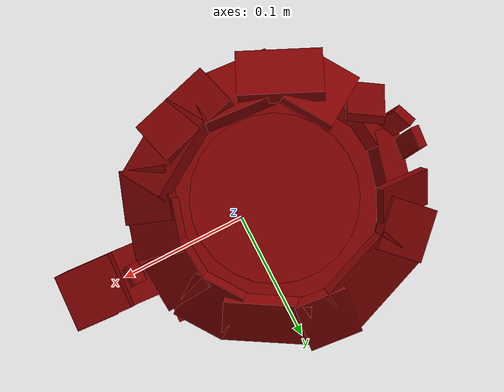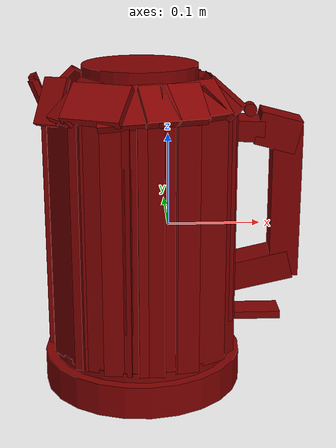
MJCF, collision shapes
<?xml version='1.0' encoding='UTF-8'?>
<mujoco model="model">
  <compiler angle="radian"/>
  <asset>
    <mesh file="visuals/Body001.obj" name="Body001_vis"/>
    <mesh file="visuals/Button001.obj" name="Button001_vis"/>
    <mesh file="visuals/Handle001.obj" name="Handle001_vis"/>
    <mesh file="visuals/Handle001_Clear.obj" name="Handle001_Clear_vis"/>
    <mesh file="visuals/Lever001.obj" name="Lever001_vis"/>
    <mesh file="visuals/Lid001.obj" name="Lid001_vis"/>
    <texture file="visuals/T_BC001.png" name="Body001_material" type="2d"/>
    <material name="Body001_material" rgba="1 1 1 1.0" texture="Body001_material" shininess="0.5" specular="0.3103448502657381"/>
    <texture file="visuals/T_BC001.png" name="Handle001_material" type="2d"/>
    <material name="Handle001_material" rgba="1 1 1 1.0" texture="Handle001_material" shininess="0.5" specular="0.3103448502657381"/>
    <texture file="visuals/T_BC001.png" name="Button001_material" type="2d"/>
    <material name="Button001_material" rgba="1 1 1 1.0" texture="Button001_material" shininess="0.5" specular="0.3103448502657381"/>
    <texture file="visuals/T_BC001.png" name="Handle001_Clear_material" type="2d"/>
    <material name="Handle001_Clear_material" rgba="1 1 1 0.699999988079071" texture="Handle001_Clear_material" shininess="0.5" specular="0.3103448502657381"/>
    <texture file="visuals/T_BC001.png" name="Lever001_material" type="2d"/>
    <material name="Lever001_material" rgba="1 1 1 1.0" texture="Lever001_material" shininess="0.5" specular="0.3103448502657381"/>
    <texture file="visuals/T_BC001.png" name="Lid001_material" type="2d"/>
    <material name="Lid001_material" rgba="1 1 1 1.0" texture="Lid001_material" shininess="0.5" specular="0.3103448502657381"/>
  </asset>
  <default>
    <default class="visual">
      <geom conaffinity="0" contype="0" group="1" type="mesh"/>
    </default>
    <default class="collision">
      <geom group="0" rgba="0.5 0 0 0.5"/>
    </default>
    <default class="spawn">
      <geom group="0" rgba="1 1 1 0.5" contype="0" conaffinity="0"/>
      <site group="0" rgba="1 1 1 0.5"/>
    </default>
    <default class="region">
      <geom group="1" conaffinity="0" contype="0" rgba="0 1 0 0"/>
    </default>
  </default>
  <worldbody>
    <body>
      <body name="object">
        <geom mesh="Body001_vis" type="mesh" solimp="0.998 0.998 0.001" solref="0.001 1" density="100" friction="0.95 0.3 0.1" class="visual" material="Body001_material"/>
        <geom class="collision" type="cylinder" pos="-0.028729 -0.001974 -0.159463" size="0.10825394093990326 0.01788499765098095" quat="0.9952542185783386 0.0 -0.0 -0.09730900824069977"/>
        <body name="Handle001">
          <joint axis="0.0 0.0 1.0" pos="0.003928 0.000000 0.003751" limited="true" name="Handle001_joint" range="0.0 0.05" type="slide" damping="1" frictionloss="1" armature=".01" stiffness="0.05"/>
          <geom mesh="Handle001_vis" type="mesh" solimp="0.998 0.998 0.001" solref="0.001 1" density="100" friction="0.95 0.3 0.1" class="visual" material="Handle001_material"/>
          <geom class="collision" type="box" pos="-0.038312 -0.090794 -0.002971" size="0.03177794814109802 0.007551992777734995 0.1315709799528122" quat="0.998534619808197 0.0 -0.0 -0.05411641299724579"/>
          <geom class="collision" type="box" pos="-0.100893 -0.053794 -0.002971" size="0.03177794814109802 0.007936511188745499 0.1315709799528122" quat="0.8789007067680359 0.0 -0.0 -0.4770047664642334"/>
          <geom class="collision" type="box" pos="-0.116028 0.020319 -0.002971" size="0.03177794814109802 0.008548380807042122 0.1315709799528122" quat="0.6136882901191711 0.0 -0.0 -0.789548397064209"/>
          <geom class="collision" type="box" pos="-0.065057 0.083195 -0.002971" size="0.03177794814109802 0.007675655651837587 0.1315709799528122" quat="0.18279728293418884 0.0 -0.0 -0.9831506013870239"/>
          <geom class="collision" type="box" pos="0.018973 0.077868 -0.002971" size="0.03177794814109802 0.0067435577511787415 0.1315709799528122" quat="0.2637399733066559 0.0 0.0 0.9645938277244568"/>
          <geom class="collision" type="box" pos="0.060388 0.000981 0.016015" size="0.046102020889520645 0.010051669552922249 0.11258896440267563" quat="0.7281248569488525 -0.0004087180132046342 0.0006575753795914352 0.6854441165924072"/>
          <geom class="collision" type="box" pos="0.027280 -0.072810 -0.002971" size="0.031777944415807724 0.006578252650797367 0.1315709799528122" quat="0.9611046314239502 0.0 0.0 0.2761845886707306"/>
          <geom class="collision" type="box" pos="-0.040143 -0.083641 0.144729" size="0.031777944415807724 0.004828159231692553 0.023549992591142654" quat="0.9155716896057129 -0.3984971046447754 -0.02159680426120758 -0.04961999133229256"/>
          <geom class="collision" type="box" pos="0.024555 -0.068459 0.147144" size="0.031777940690517426 0.004828159231692553 0.02214823290705681" quat="0.8789564371109009 -0.38878995180130005 -0.11172330379486084 0.25257837772369385"/>
          <geom class="collision" type="box" pos="-0.093349 -0.056419 0.145818" size="0.020570602267980576 0.0034213955514132977 0.027166645973920822" quat="0.7993727326393127 -0.36533477902412415 0.19827784597873688 -0.43384280800819397"/>
          <geom class="collision" type="box" pos="-0.063912 0.080223 0.144160" size="0.031777944415807724 0.004104438237845898 0.022223781794309616" quat="0.16554579138755798 -0.07752057909965515 0.41693398356437683 -0.8903657793998718"/>
          <geom class="collision" type="box" pos="0.015808 0.072514 0.142689" size="0.03177794814109802 0.0048281606286764145 0.020230567082762718" quat="0.24477618932724 -0.09820134192705154 -0.35915809869766235 0.8952354788780212"/>
          <geom class="collision" type="box" pos="0.126033 -0.000990 0.029300" size="0.021128041669726372 0.01556030660867691 0.08286862075328827" quat="0.7281248569488525 -0.0004087180132046342 0.0006575753795914352 0.6854441165924072"/>
          <geom class="collision" type="box" pos="0.101268 0.000161 -0.048590" size="0.021128041669726372 0.015550822019577026 0.032239880412817" quat="0.45165857672691345 -0.5706550478935242 -0.5425424575805664 0.419529527425766"/>
          <geom class="collision" type="box" pos="0.115767 -0.001391 0.104288" size="0.021128041669726372 0.017532361671328545 0.022128960117697716" quat="0.569884181022644 -0.4517020583152771 -0.4166291058063507 0.5455432534217834"/>
          <geom class="collision" type="box" pos="-0.118624 -0.033578 0.141906" size="0.01368618942797184 0.0032375305891036987 0.02512413263320923" quat="0.9283146858215332 -0.24535681307315826 0.05587155744433403 -0.27369746565818787"/>
          <geom class="collision" type="box" pos="-0.132052 0.006775 0.139395" size="0.00797797180712223 0.003237530356273055 0.02512413263320923" quat="0.6632282137870789 0.14294251799583435 -0.10044980049133301 -0.7277400493621826"/>
          <geom class="collision" type="box" pos="-0.111369 0.038211 0.145008" size="0.01368618942797184 0.0032375305891036987 0.02512413263320923" quat="0.4328509271144867 -0.33520594239234924 0.2060462385416031 -0.8110622763633728"/>
          <geom class="collision" type="box" pos="-0.129418 -0.011603 0.136712" size="0.00797797180712223 0.003237530356273055 0.02512413077056408" quat="0.8185434341430664 0.11801804602146149 -0.1479043960571289 -0.5423860549926758"/>
          <geom class="collision" type="box" pos="-0.004091 -0.088704 -0.002971" size="0.03177794814109802 0.00719044404104352 0.1315709799528122" quat="0.9952359199523926 0.0 0.0 0.09749576449394226"/>
          <geom class="collision" type="box" pos="-0.068567 -0.081044 -0.002971" size="0.031777944415807724 0.008318050764501095 0.1315709799528122" quat="0.9836103916168213 0.0 -0.0 -0.1803070306777954"/>
          <geom class="collision" type="box" pos="-0.119642 -0.007800 -0.002971" size="0.022828688845038414 0.007467642426490784 0.1315709799528122" quat="0.7443098425865173 0.0 -0.0 -0.667834460735321"/>
          <geom class="collision" type="box" pos="-0.096180 0.060250 -0.002971" size="0.022828688845038414 0.0075096311047673225 0.1315709799528122" quat="0.43809083104133606 0.0 -0.0 -0.8989307284355164"/>
          <geom class="collision" type="box" pos="-0.021560 0.090721 -0.002971" size="0.022828688845038414 0.0073873139917850494 0.1315709799528122" quat="0.06565549224615097 0.0 0.0 0.9978423714637756"/>
          <geom class="collision" type="box" pos="0.048585 0.050111 -0.002971" size="0.022828688845038414 0.007242921739816666 0.1315709799528122" quat="0.40496256947517395 0.0 0.0 0.9143332839012146"/>
          <geom class="collision" type="box" pos="0.049955 -0.050386 -0.002971" size="0.022828688845038414 0.006672079674899578 0.1315709799528122" quat="0.9137113094329834 0.0 0.0 0.4063638746738434"/>
          <geom class="collision" type="box" pos="-0.101736 0.060102 0.144160" size="0.019828183576464653 0.004104438703507185 0.022223781794309616" quat="0.3484572768211365 -0.16317304968833923 0.39143067598342896 -0.8359031677246094"/>
          <geom class="collision" type="box" pos="-0.024005 0.090902 0.144160" size="0.019828183576464653 0.004104438237845898 0.022223781794309616" quat="0.04364174231886864 -0.020436236634850502 -0.4235868453979492 0.9045727849006653"/>
          <geom class="collision" type="box" pos="0.001304 -0.083111 0.147144" size="0.031777944415807724 0.004828159231692553 0.02214823290705681" quat="0.9059739112854004 -0.4007406234741211 -0.05519670248031616 0.12478592246770859"/>
          <geom class="collision" type="box" pos="-0.072273 -0.078652 0.147144" size="0.031777940690517426 0.004828159231692553 0.02214823290705681" quat="0.8936091065406799 -0.39527130126953125 0.08602521568536758 -0.19448137283325195"/>
          <geom class="collision" type="box" pos="0.058171 0.014777 0.143800" size="0.019828181713819504 0.004104438703507185 0.022223781794309616" quat="0.6160282492637634 -0.2884693145751953 -0.31085196137428284 0.663826584815979"/>
          <geom class="collision" type="box" pos="0.047023 0.044080 0.143800" size="0.019828183576464653 0.004104438703507185 0.022223779931664467" quat="0.4209458827972412 -0.19711750745773315 -0.3754838705062866 0.8018485307693481"/>
          <geom class="collision" type="box" pos="0.056579 -0.020896 0.143800" size="0.019828181713819504 0.004104438703507185 0.022223781794309616" quat="0.7240111231803894 -0.339034765958786 -0.25475266575813293 0.5440261363983154"/>
          <geom class="collision" type="box" pos="0.050845 -0.045422 0.143800" size="0.019828181713819504 0.004104438703507185 0.022223781794309616" quat="0.7399323582649231 -0.34649035334587097 -0.24451589584350586 0.5221652388572693"/>
          <geom class="collision" type="box" pos="0.078213 0.000778 0.106225" size="0.021128041669726372 0.010931278578937054 0.023425329476594925" quat="0.5192845463752747 -0.5103222727775574 -0.47821682691574097 0.49114498496055603"/>
          <geom class="collision" type="cylinder" pos="-0.028604 -0.002374 -0.135915" size="0.09767773747444153 0.005080470349639654" quat="0.9952542185783386 0.0 -0.0 -0.09730900824069977"/>
          <body name="Button001">
            <joint axis="0.0 0.0 -1.0" pos="0.086611 0.000561 0.126102" limited="true" name="Button001_joint" range="0.0 0.004" type="slide" damping="1" frictionloss="1" armature=".01" stiffness="0.5" springref="-0.5"/>
            <geom mesh="Button001_vis" type="mesh" solimp="0.998 0.998 0.001" solref="0.001 1" density="100" friction="0.95 0.3 0.1" class="visual" material="Button001_material"/>
            <geom class="collision" type="cylinder" pos="0.086774 0.000526 0.126007" size="0.00667915865778923 0.0075043197721242905" quat="0.7071067094802856 -0.7071068286895752 -0.0 0.0"/>
          </body>
          <body name="Handle001_Clear">
            <geom mesh="Handle001_Clear_vis" type="mesh" solimp="0.998 0.998 0.001" solref="0.001 1" density="100" friction="0.95 0.3 0.1" class="visual" material="Handle001_Clear_material"/>
            <geom class="collision" type="box" pos="-0.028020 0.095338 0.000036" size="0.020022518932819366 0.001935329637490213 0.08758164197206497" quat="1.0 0.0 0.0 0.0"/>
            <geom class="collision" type="box" pos="-0.028020 -0.096259 0.000036" size="0.020022518932819366 0.001935329637490213 0.08758164197206497" quat="1.0 0.0 0.0 0.0"/>
          </body>
          <body name="Lever001">
            <joint axis="0.0 0.0 -1.0" pos="0.078207 0.000000 -0.102813" limited="true" name="Lever001_joint" range="0.0 0.01" type="slide" damping="1" frictionloss="1" armature=".01" stiffness="0.8" springref="-0.8"/>
            <geom mesh="Lever001_vis" type="mesh" solimp="0.998 0.998 0.001" solref="0.001 1" density="100" friction="0.95 0.3 0.1" class="visual" material="Lever001_material"/>
            <geom class="collision" type="box" pos="0.094056 -0.000037 -0.103128" size="0.029893187806010246 0.01574653573334217 0.004093415103852749" quat="1.0 0.0 0.0 0.0"/>
          </body>
          <body name="Lid001">
            <joint axis="0.0 1.0 0.0" pos="0.037359 -0.000584 0.166614" limited="true" name="Lid001_joint" range="0.0 1.5707963267948966" type="hinge" damping="1" frictionloss="1" armature=".01" stiffness="0.05"/>
            <geom mesh="Lid001_vis" type="mesh" solimp="0.998 0.998 0.001" solref="0.001 1" density="100" friction="0.95 0.3 0.1" class="visual" material="Lid001_material"/>
            <geom class="collision" type="cylinder" pos="-0.028729 -0.001974 0.167854" size="0.060958582907915115 0.007217027712613344" quat="0.9952542185783386 0.0 -0.0 -0.09730900824069977"/>
          </body>
        </body>
        <geom class="region" name="reg_main" type="box" pos="5.000000000005e-07 0.0 5.000000000005e-07" size="0.13928849999999998 0.097955 0.17628149999999998"/>
      </body>
    </body>
  </worldbody>
  <actuator>
    <motor name="Handle001_joint_actuator" joint="Handle001_joint" gear="50"/>
    <motor name="Button001_joint_actuator" joint="Button001_joint" gear="0.2"/>
    <motor name="Lever001_joint_actuator" joint="Lever001_joint" gear="1.5"/>
    <motor name="Lid001_joint_actuator" joint="Lid001_joint" gear="10"/>
  </actuator>
</mujoco>
